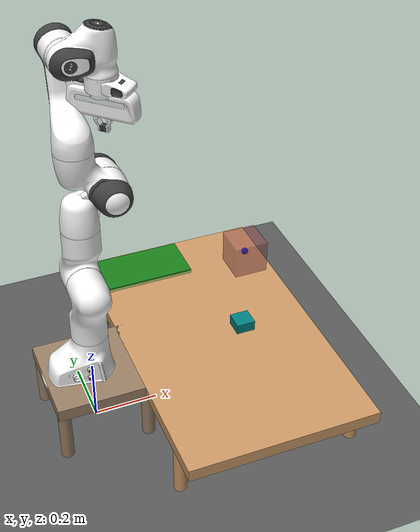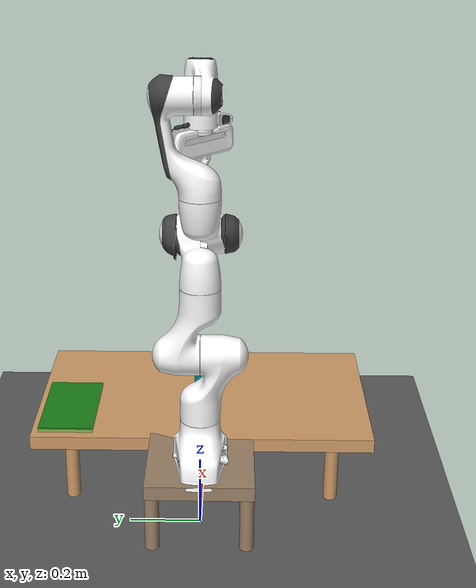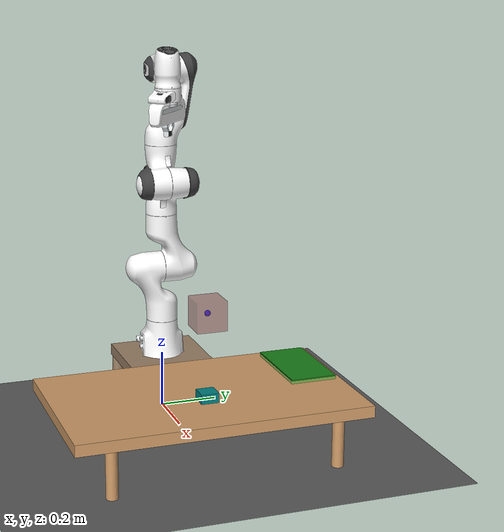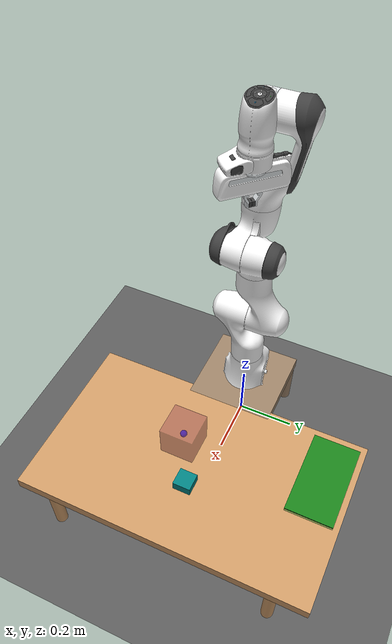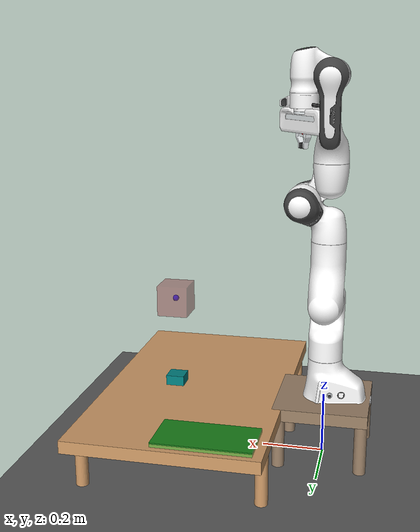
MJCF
<mujoco model="pickAndPlaceDirect">
    <option gravity="0 0 -9.8"/>

    <!-- Include panda robot, but we'll position it at the table edge -->
    <include file="panda.xml"/>

    <visual>
        <global azimuth="120" elevation="-20"/>
        <headlight ambient="0.3 0.3 0.3" diffuse="0.1 0.1 0.1"/>
    </visual>

    <asset>
        <!-- Textures and materials -->
        <texture name="floor" type="2d" builtin="checker" rgb1="0.2 0.2 0.2" rgb2="0.5 0.5 0.5" width="512" height="512"/>
        <material name="floor" texture="floor"/>

        <material name="table_mat" rgba="0.8 0.6 0.4 1"/>
        <material name="robot_table_mat" rgba="0.6 0.5 0.4 1"/>  <!-- Slightly different color for robot table -->
        <material name="placement_box_mat" rgba="0.2 0.8 0.2 0.5"/>  <!-- Green, semi-transparent -->
        <material name="placement_box_outline" rgba="0.1 0.5 0.1 1"/>  <!-- Dark green for outline -->
    </asset>

    <worldbody>
        <light pos="0 0 1.5" directional="true"/>
        <geom name="grid" size="1 1 0.01" type="plane" material="floor"/>

        <!-- Robot table: separate table for the robot arm base -->
        <!-- Positioned near robot base at x=0, provides a platform for the robot -->
        <!-- Made smaller (0.15 x 0.15) to avoid overlap with main table at x=0.5 -->
        <body name="robot_table" pos="0 0 0.18">
            <geom name="robot_table_top" type="box" size="0.15 0.15 0.02" material="robot_table_mat" mass="2"/>
            <!-- Robot table legs (positioned at corners) -->
            <geom pos="-0.13 -0.13 -0.09" type="cylinder" size="0.02 0.09" material="robot_table_mat" mass="0.3"/>
            <geom pos=" 0.13 -0.13 -0.09" type="cylinder" size="0.02 0.09" material="robot_table_mat" mass="0.3"/>
            <geom pos="-0.13  0.13 -0.09" type="cylinder" size="0.02 0.09" material="robot_table_mat" mass="0.3"/>
            <geom pos=" 0.13  0.13 -0.09" type="cylinder" size="0.02 0.09" material="robot_table_mat" mass="0.3"/>
        </body>

        <!-- Main table: positioned forward (more positive x) for picking/placing -->
        <!-- Table center at (0.42, 0, 0.18) -->
        <!-- Reduced x size to 0.3 (from 0.4) so robot at x=0 can reach all areas -->
        <!-- Reduced y size to 0.5 (from 0.6) to make it slightly shorter -->
        <!-- Robot is at x=0, so table extends from x=0.12 to x=0.72 (robot on left side) -->
        <!-- Table extends from y=-0.5 to y=0.5 (symmetric in y) -->
        <body name="table" pos="0.42 0 0.18">
            <geom name="table_top" type="box" size="0.3 0.5 0.02" material="table_mat" mass="4"/>
            <!-- Table legs (positioned at corners of table) -->
            <geom pos="-0.28 -0.38 -0.09" type="cylinder" size="0.02 0.09" material="table_mat" mass="1"/>
            <geom pos=" 0.28 -0.38 -0.09" type="cylinder" size="0.02 0.09" material="table_mat" mass="1"/>
            <geom pos="-0.28  0.38 -0.09" type="cylinder" size="0.02 0.09" material="table_mat" mass="1"/>
            <geom pos=" 0.28  0.38 -0.09" type="cylinder" size="0.02 0.09" material="table_mat" mass="1"/>
        </body>

        <!-- Placement box: on the side of the table (positive y side) -->
        <!-- Positioned at the far edge of the table, slightly above table surface -->
        <!-- Shifted to match new table position (0.5, 0, 0.18) -->
        <body name="placement_box" pos="0.3 0.4 0.20">
            <!-- Main placement area (semi-transparent green box) -->
            <geom name="placement_area" type="box" size="0.15 0.08 0.01" material="placement_box_mat"
                  contype="0" conaffinity="0" mass="0.001"/>
            <!-- Outline for visibility (thin box frame) -->
            <geom name="placement_outline_top" type="box" size="0.15 0.08 0.002" pos="0 0 0.012"
                  material="placement_box_outline" contype="0" conaffinity="0"/>
            <geom name="placement_outline_bottom" type="box" size="0.15 0.08 0.002" pos="0 0 -0.012"
                  material="placement_box_outline" contype="0" conaffinity="0"/>
            <!-- Visual marker site for easy access -->
            <site name="placement_target" type="box" size="0.15 0.08 0.01" rgba="0.2 0.8 0.2 0.3" group="1"/>
        </body>

        <!-- Note: Robot from panda.xml is included and has link0 at (0, 0, 0.19) -->
        <!-- The robot is positioned on the robot_table, which is at (0, 0, 0.18) -->
        <!-- Main table is at (0.5, 0, 0.18), moved forward for better reach -->

        <!-- Block to pick up: spawns on the table surface -->
        <!-- Table top is at z=0.18 + 0.02 = 0.20, so block center should be at z=0.20 + block_half_height -->
        <!-- Blocks will spawn randomly on table, but initial position is on table -->
        <body name="target" pos="0.5 0.0 0.203">
            <joint type="free"/>
            <geom name="box" type="box" size="0.03 0.03 0.03" mass="0.0027" rgba="0 0.5 0.5 1"/>
        </body>

        <!-- Block to visualize trajectory (mocap) -->
        <body name="mocap" pos="0.5 0 .5" quat="0 1 0 0" mocap="true">
            <geom type="box" size=".05 .05 .05" contype="0" conaffinity="0" rgba=".6 .3 .3 .5"/>
            <site type="sphere" size="0.01" rgba="0 0 1 1" group="1"/>
        </body>
    </worldbody>
</mujoco>

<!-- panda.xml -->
<mujoco model="panda">
  <compiler angle="radian" meshdir="assets" autolimits="true"/>

  <option integrator="implicitfast"/>

  <default>
    <default class="panda">
      <material specular="0.5" shininess="0.25"/>
      <joint armature="0.1" damping="1" axis="0 0 1" range="-2.8973 2.8973"/>
      <general dyntype="none" biastype="affine" ctrlrange="-2.8973 2.8973" forcerange="-87 87"/>
      <default class="finger">
        <joint axis="0 1 0" type="slide" range="0 0.04"/>
      </default>

      <default class="visual">
        <geom type="mesh" contype="0" conaffinity="0" group="2"/>
      </default>
      <default class="collision">
        <geom type="mesh" group="3"/>
        <default class="fingertip_pad_collision_1">
          <geom type="box" size="0.0085 0.004 0.0085" pos="0 0.0055 0.0445"/>
        </default>
        <default class="fingertip_pad_collision_2">
          <geom type="box" size="0.003 0.002 0.003" pos="0.0055 0.002 0.05"/>
        </default>
        <default class="fingertip_pad_collision_3">
          <geom type="box" size="0.003 0.002 0.003" pos="-0.0055 0.002 0.05"/>
        </default>
        <default class="fingertip_pad_collision_4">
          <geom type="box" size="0.003 0.002 0.0035" pos="0.0055 0.002 0.0395"/>
        </default>
        <default class="fingertip_pad_collision_5">
          <geom type="box" size="0.003 0.002 0.0035" pos="-0.0055 0.002 0.0395"/>
        </default>
      </default>
    </default>
  </default>

  <asset>
    <material class="panda" name="white" rgba="1 1 1 1"/>
    <material class="panda" name="off_white" rgba="0.901961 0.921569 0.929412 1"/>
    <material class="panda" name="black" rgba="0.25 0.25 0.25 1"/>
    <material class="panda" name="green" rgba="0 1 0 1"/>
    <material class="panda" name="light_blue" rgba="0.039216 0.541176 0.780392 1"/>

    <!-- Collision meshes -->
    <mesh name="link0_c" file="link0.stl"/>
    <mesh name="link1_c" file="link1.stl"/>
    <mesh name="link2_c" file="link2.stl"/>
    <mesh name="link3_c" file="link3.stl"/>
    <mesh name="link4_c" file="link4.stl"/>
    <mesh name="link5_c0" file="link5_collision_0.obj"/>
    <mesh name="link5_c1" file="link5_collision_1.obj"/>
    <mesh name="link5_c2" file="link5_collision_2.obj"/>
    <mesh name="link6_c" file="link6.stl"/>
    <mesh name="link7_c" file="link7.stl"/>
    <mesh name="hand_c" file="hand.stl"/>

    <!-- Visual meshes -->
    <mesh file="link0_0.obj"/>
    <mesh file="link0_1.obj"/>
    <mesh file="link0_2.obj"/>
    <mesh file="link0_3.obj"/>
    <mesh file="link0_4.obj"/>
    <mesh file="link0_5.obj"/>
    <mesh file="link0_7.obj"/>
    <mesh file="link0_8.obj"/>
    <mesh file="link0_9.obj"/>
    <mesh file="link0_10.obj"/>
    <mesh file="link0_11.obj"/>
    <mesh file="link1.obj"/>
    <mesh file="link2.obj"/>
    <mesh file="link3_0.obj"/>
    <mesh file="link3_1.obj"/>
    <mesh file="link3_2.obj"/>
    <mesh file="link3_3.obj"/>
    <mesh file="link4_0.obj"/>
    <mesh file="link4_1.obj"/>
    <mesh file="link4_2.obj"/>
    <mesh file="link4_3.obj"/>
    <mesh file="link5_0.obj"/>
    <mesh file="link5_1.obj"/>
    <mesh file="link5_2.obj"/>
    <mesh file="link6_0.obj"/>
    <mesh file="link6_1.obj"/>
    <mesh file="link6_2.obj"/>
    <mesh file="link6_3.obj"/>
    <mesh file="link6_4.obj"/>
    <mesh file="link6_5.obj"/>
    <mesh file="link6_6.obj"/>
    <mesh file="link6_7.obj"/>
    <mesh file="link6_8.obj"/>
    <mesh file="link6_9.obj"/>
    <mesh file="link6_10.obj"/>
    <mesh file="link6_11.obj"/>
    <mesh file="link6_12.obj"/>
    <mesh file="link6_13.obj"/>
    <mesh file="link6_14.obj"/>
    <mesh file="link6_15.obj"/>
    <mesh file="link6_16.obj"/>
    <mesh file="link7_0.obj"/>
    <mesh file="link7_1.obj"/>
    <mesh file="link7_2.obj"/>
    <mesh file="link7_3.obj"/>
    <mesh file="link7_4.obj"/>
    <mesh file="link7_5.obj"/>
    <mesh file="link7_6.obj"/>
    <mesh file="link7_7.obj"/>
    <mesh file="hand_0.obj"/>
    <mesh file="hand_1.obj"/>
    <mesh file="hand_2.obj"/>
    <mesh file="hand_3.obj"/>
    <mesh file="hand_4.obj"/>
    <mesh file="finger_0.obj"/>
    <mesh file="finger_1.obj"/>
  </asset>

  <worldbody>
    <light name="top" pos="0 0 2" mode="trackcom"/>
    <body name="link0" childclass="panda" pos="0 0 0.19">
      <inertial mass="0.629769" pos="-0.041018 -0.00014 0.049974"
        fullinertia="0.00315 0.00388 0.004285 8.2904e-7 0.00015 8.2299e-6"/>
      <geom mesh="link0_0" material="off_white" class="visual"/>
      <geom mesh="link0_1" material="black" class="visual"/>
      <geom mesh="link0_2" material="off_white" class="visual"/>
      <geom mesh="link0_3" material="black" class="visual"/>
      <geom mesh="link0_4" material="off_white" class="visual"/>
      <geom mesh="link0_5" material="black" class="visual"/>
      <geom mesh="link0_7" material="white" class="visual"/>
      <geom mesh="link0_8" material="white" class="visual"/>
      <geom mesh="link0_9" material="black" class="visual"/>
      <geom mesh="link0_10" material="off_white" class="visual"/>
      <geom mesh="link0_11" material="white" class="visual"/>
      <geom mesh="link0_c" class="collision"/>
      <body name="link1" pos="0 0 0.333">
        <inertial mass="4.970684" pos="0.003875 0.002081 -0.04762"
          fullinertia="0.70337 0.70661 0.0091170 -0.00013900 0.0067720 0.019169"/>
        <joint name="joint1"/>
        <geom material="white" mesh="link1" class="visual"/>
        <geom mesh="link1_c" class="collision"/>
        <body name="link2" quat="1 -1 0 0">
          <inertial mass="0.646926" pos="-0.003141 -0.02872 0.003495"
            fullinertia="0.0079620 2.8110e-2 2.5995e-2 -3.925e-3 1.0254e-2 7.04e-4"/>
          <joint name="joint2" range="-1.7628 1.7628"/>
          <geom material="white" mesh="link2" class="visual"/>
          <geom mesh="link2_c" class="collision"/>
          <body name="link3" pos="0 -0.316 0" quat="1 1 0 0">
            <joint name="joint3"/>
            <inertial mass="3.228604" pos="2.7518e-2 3.9252e-2 -6.6502e-2"
              fullinertia="3.7242e-2 3.6155e-2 1.083e-2 -4.761e-3 -1.1396e-2 -1.2805e-2"/>
            <geom mesh="link3_0" material="white" class="visual"/>
            <geom mesh="link3_1" material="white" class="visual"/>
            <geom mesh="link3_2" material="white" class="visual"/>
            <geom mesh="link3_3" material="black" class="visual"/>
            <geom mesh="link3_c" class="collision"/>
            <body name="link4" pos="0.0825 0 0" quat="1 1 0 0">
              <inertial mass="3.587895" pos="-5.317e-2 1.04419e-1 2.7454e-2"
                fullinertia="2.5853e-2 1.9552e-2 2.8323e-2 7.796e-3 -1.332e-3 8.641e-3"/>
              <joint name="joint4" range="-3.0718 -0.0698"/>
              <geom mesh="link4_0" material="white" class="visual"/>
              <geom mesh="link4_1" material="white" class="visual"/>
              <geom mesh="link4_2" material="black" class="visual"/>
              <geom mesh="link4_3" material="white" class="visual"/>
              <geom mesh="link4_c" class="collision"/>
              <body name="link5" pos="-0.0825 0.384 0" quat="1 -1 0 0">
                <inertial mass="1.225946" pos="-1.1953e-2 4.1065e-2 -3.8437e-2"
                  fullinertia="3.5549e-2 2.9474e-2 8.627e-3 -2.117e-3 -4.037e-3 2.29e-4"/>
                <joint name="joint5"/>
                <geom mesh="link5_0" material="black" class="visual"/>
                <geom mesh="link5_1" material="white" class="visual"/>
                <geom mesh="link5_2" material="white" class="visual"/>
                <geom mesh="link5_c0" class="collision"/>
                <geom mesh="link5_c1" class="collision"/>
                <geom mesh="link5_c2" class="collision"/>
                <body name="link6" quat="1 1 0 0">
                  <inertial mass="1.666555" pos="6.0149e-2 -1.4117e-2 -1.0517e-2"
                    fullinertia="1.964e-3 4.354e-3 5.433e-3 1.09e-4 -1.158e-3 3.41e-4"/>
                  <joint name="joint6" range="-0.0175 3.7525"/>
                  <geom mesh="link6_0" material="off_white" class="visual"/>
                  <geom mesh="link6_1" material="white" class="visual"/>
                  <geom mesh="link6_2" material="black" class="visual"/>
                  <geom mesh="link6_3" material="white" class="visual"/>
                  <geom mesh="link6_4" material="white" class="visual"/>
                  <geom mesh="link6_5" material="white" class="visual"/>
                  <geom mesh="link6_6" material="white" class="visual"/>
                  <geom mesh="link6_7" material="light_blue" class="visual"/>
                  <geom mesh="link6_8" material="light_blue" class="visual"/>
                  <geom mesh="link6_9" material="black" class="visual"/>
                  <geom mesh="link6_10" material="black" class="visual"/>
                  <geom mesh="link6_11" material="white" class="visual"/>
                  <geom mesh="link6_12" material="green" class="visual"/>
                  <geom mesh="link6_13" material="white" class="visual"/>
                  <geom mesh="link6_14" material="black" class="visual"/>
                  <geom mesh="link6_15" material="black" class="visual"/>
                  <geom mesh="link6_16" material="white" class="visual"/>
                  <geom mesh="link6_c" class="collision"/>
                  <body name="link7" pos="0.088 0 0" quat="1 1 0 0">
                    <inertial mass="7.35522e-01" pos="1.0517e-2 -4.252e-3 6.1597e-2"
                      fullinertia="1.2516e-2 1.0027e-2 4.815e-3 -4.28e-4 -1.196e-3 -7.41e-4"/>
                    <joint name="joint7"/>
                    <geom mesh="link7_0" material="white" class="visual"/>
                    <geom mesh="link7_1" material="black" class="visual"/>
                    <geom mesh="link7_2" material="black" class="visual"/>
                    <geom mesh="link7_3" material="black" class="visual"/>
                    <geom mesh="link7_4" material="black" class="visual"/>
                    <geom mesh="link7_5" material="black" class="visual"/>
                    <geom mesh="link7_6" material="black" class="visual"/>
                    <geom mesh="link7_7" material="white" class="visual"/>
                    <geom mesh="link7_c" class="collision"/>
                    <body name="hand" pos="0 0 0.107" quat="0.9238795 0 0 -0.3826834">
                    <site name="palm_contact_edge_vis" pos="0 0 0.06" size="0.01" type="sphere" rgba="1 0 0 1"/>
                      <inertial mass="0.73" pos="-0.01 0 0.03" diaginertia="0.001 0.0025 0.0017"/>
                      <geom mesh="hand_0" material="off_white" class="visual"/>
                      <geom mesh="hand_1" material="black" class="visual"/>
                      <geom mesh="hand_2" material="black" class="visual"/>
                      <geom mesh="hand_3" material="white" class="visual"/>
                      <geom mesh="hand_4" material="off_white" class="visual"/>
                      <geom mesh="hand_c" class="collision"/>
                      <body name="left_finger" pos="0 0 0.0584">
                        <inertial mass="0.015" pos="0 0 0" diaginertia="2.375e-6 2.375e-6 7.5e-7"/>
                        <joint name="finger_joint1" class="finger"/>
                        <geom mesh="finger_0" material="off_white" class="visual"/>
                        <geom mesh="finger_1" material="black" class="visual"/>
                        <geom mesh="finger_0" class="collision"/>
                        <geom class="fingertip_pad_collision_1"/>
                        <geom class="fingertip_pad_collision_2"/>
                        <geom class="fingertip_pad_collision_3"/>
                        <geom class="fingertip_pad_collision_4"/>
                        <geom class="fingertip_pad_collision_5"/>
                      </body>
                      <body name="right_finger" pos="0 0 0.0584" quat="0 0 0 1">
                        <inertial mass="0.015" pos="0 0 0" diaginertia="2.375e-6 2.375e-6 7.5e-7"/>
                        <joint name="finger_joint2" class="finger"/>
                        <geom mesh="finger_0" material="off_white" class="visual"/>
                        <geom mesh="finger_1" material="black" class="visual"/>
                        <geom mesh="finger_0" class="collision"/>
                        <geom class="fingertip_pad_collision_1"/>
                        <geom class="fingertip_pad_collision_2"/>
                        <geom class="fingertip_pad_collision_3"/>
                        <geom class="fingertip_pad_collision_4"/>
                        <geom class="fingertip_pad_collision_5"/>
                      </body>
                    </body>
                  </body>
                </body>
              </body>
            </body>
          </body>
        </body>
      </body>
    </body>
  </worldbody>

  <tendon>
    <fixed name="split">
      <joint joint="finger_joint1" coef="0.5"/>
      <joint joint="finger_joint2" coef="0.5"/>
    </fixed>
  </tendon>

  <equality>
    <joint joint1="finger_joint1" joint2="finger_joint2" solimp="0.95 0.99 0.001" solref="0.005 1"/>
  </equality>

  <actuator>
    <general class="panda" name="actuator1" joint="joint1" gainprm="4500" biasprm="0 -4500 -450"/>
    <general class="panda" name="actuator2" joint="joint2" gainprm="4500" biasprm="0 -4500 -450"
      ctrlrange="-1.7628 1.7628"/>
    <general class="panda" name="actuator3" joint="joint3" gainprm="3500" biasprm="0 -3500 -350"/>
    <general class="panda" name="actuator4" joint="joint4" gainprm="3500" biasprm="0 -3500 -350"
      ctrlrange="-3.0718 -0.0698"/>
    <general class="panda" name="actuator5" joint="joint5" gainprm="2000" biasprm="0 -2000 -200" forcerange="-12 12"/>
    <general class="panda" name="actuator6" joint="joint6" gainprm="2000" biasprm="0 -2000 -200" forcerange="-12 12"
      ctrlrange="-0.0175 3.7525"/>
    <general class="panda" name="actuator7" joint="joint7" gainprm="2000" biasprm="0 -2000 -200" forcerange="-12 12"/>
    <!-- Remap original ctrlrange (0, 0.04) to (0, 255): 0.04 * 100 / 255 = 0.01568627451 -->
    <general class="panda" name="actuator8" tendon="split" forcerange="-100 100" ctrlrange="0 255"
      gainprm="0.01568627451 0 0" biasprm="0 -100 -10"/>
  </actuator>

  <keyframe>
    <key name="home" qpos="0 0 0 -1.57079 0 1.57079 -0.7853 0.04 0.04" ctrl="0 0 0 -1.57079 0 1.57079 -0.7853 255"/>
  </keyframe>
</mujoco>
